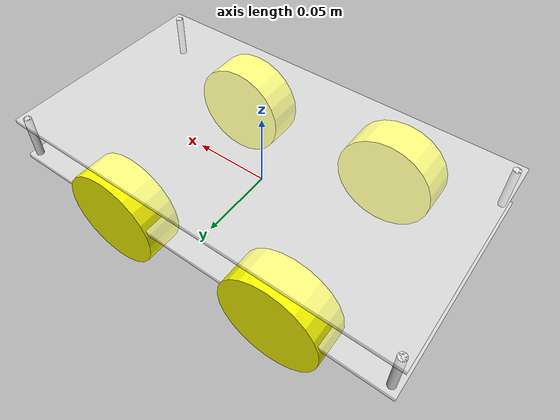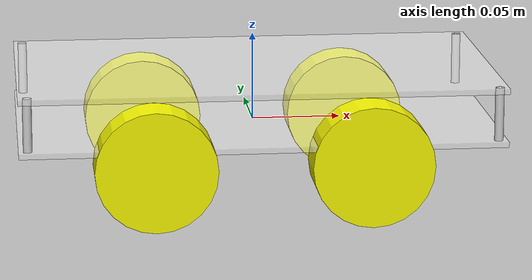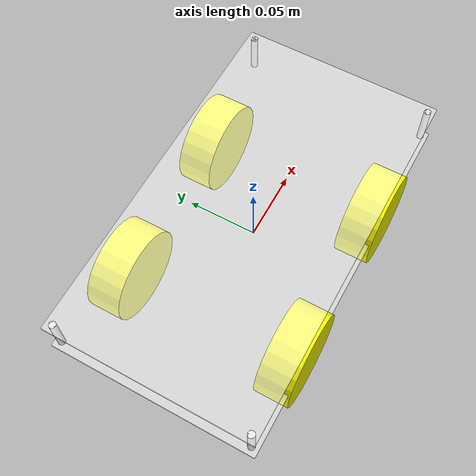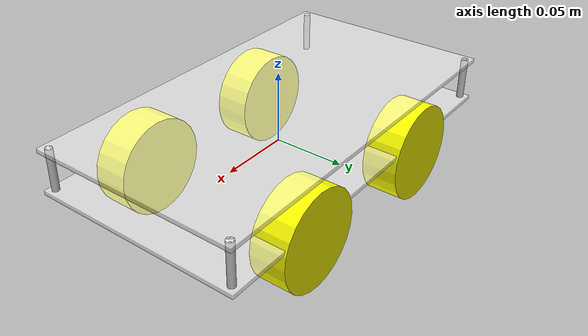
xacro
<?xml version="1.0"?>
<robot name="sp1s" xmlns:xacro="http://ros.org/wiki/xacro">
  <link name="base_link">
    <visual>
      <geometry>
        <box size="0.27 .15 .003"/>
      </geometry>
      <material name="white">
         <color rgba="1 1 1 .5"/>
    </material>
    </visual>
  </link>

  <link name="tyer_front_left">
    <visual>
      <geometry>
       <cylinder length=".025" radius="0.034"></cylinder>
      </geometry>
      <material name="yellow">
          <color rgba="1 1 0 1"/>
      </material>
    </visual>
  </link>

  <link name="tyer_front_right">
    <visual>
      <geometry>
       <cylinder length=".025" radius="0.034"></cylinder>
      </geometry>
      <material name="yellow">
          <color rgba="1 1 0 1"/>
      </material>
    </visual>
  </link>

  <link name="tyer_back_left">
    <visual>
      <geometry>
       <cylinder length=".025" radius="0.034"></cylinder>
      </geometry>
      <material name="yellow">
          <color rgba="1 1 0 1"/>
      </material>
    </visual>
  </link>

  <link name="tyer_back_right">
    <visual>
      <geometry>
       <cylinder length=".025" radius="0.034"></cylinder>
      </geometry>
      <material name="yellow">
          <color rgba="1 1 0 1"/>
      </material>
    </visual>
  </link>

  <joint name="base_to_front_left" type="fixed">
    <origin rpy="1.57075  0  0" xyz="0.06  0.064  -0.011"/>
    <parent link="base_link"/>
    <child link="tyer_front_left"/>
    <axis xyz="0 0 1"/>
  </joint>

  <joint name="base_to_front_right" type="continuous">
    <origin rpy="1.57075  0  0" xyz="0.06  -0.064  -0.011"/>
    <parent link="base_link"/>
    <child link="tyer_front_right"/>
    <axis xyz="0 0 1"/>
  </joint>

  <joint name="base_to_back_left" type="continuous">
    <origin rpy="1.57075  0  0" xyz="-0.06  0.064  -0.011"/>
    <parent link="base_link"/>
    <child link="tyer_back_left"/>
    <axis xyz="0 0 1"/>
  </joint>

  <joint name="base_to_back_right" type="continuous">
    <origin rpy="1.57075  0  0" xyz="-0.06  -0.064  -0.011"/>
    <parent link="base_link"/>
    <child link="tyer_back_right"/>
    <axis xyz="0 0 1"/>
  </joint>

  <link name="pillar_front_left">
    <visual>
      <geometry>
       <cylinder length=".03" radius="0.0025"></cylinder>
      </geometry>
      <origin xyz="0 0 0.015"/>
      <material name="silver">
          <color rgba=".86 .86 .86 1"/>
      </material>
    </visual>
  </link>

  <link name="pillar_front_right">
    <visual>
      <geometry>
       <cylinder length=".03" radius="0.0025"></cylinder>
      </geometry>
      <origin xyz="0 0 0.015"/>
      <material name="silver">
          <color rgba=".86 .86 .86 1"/>
      </material>
    </visual>
  </link>

  <link name="pillar_back_left">
    <visual>
      <geometry>
       <cylinder length=".03" radius="0.0025"></cylinder>
      </geometry>
      <origin xyz="0 0 0.015"/>
      <material name="silver">
          <color rgba=".86 .86 .86 1"/>
      </material>
    </visual>
  </link>

  <link name="pillar_back_right">
    <visual>
      <geometry>
       <cylinder length=".03" radius="0.0025"></cylinder>
      </geometry>
      <origin xyz="0 0 0.015"/>
      <material name="silver">
          <color rgba=".86 .86 .86 1"/>
      </material>
    </visual>
  </link>

  <joint name="base_to_pillar_front_left" type="fixed">
    <origin xyz="0.13  0.07  0.0015"/>
    <parent link="base_link"/>
    <child link="pillar_front_left"/>
  </joint>

  <joint name="base_to_pillar_front_right" type="fixed">
    <origin xyz="-0.13  0.07  0.0015"/>
    <parent link="base_link"/>
    <child link="pillar_front_right"/>
  </joint>

  <joint name="base_to_pillar_back_left" type="fixed">
    <origin xyz="0.13  -0.07  0.0015"/>
    <parent link="base_link"/>
    <child link="pillar_back_left"/>
  </joint>

  <joint name="base_to_pillar_back_right" type="fixed">
    <origin xyz="-0.13  -0.07  0.0015"/>
    <parent link="base_link"/>
    <child link="pillar_back_right"/>
  </joint>

  <link name="top_link">
    <visual>
      <geometry>
        <box size="0.27 .15 .003"/>
      </geometry>
      <material name="white">
         <color rgba="1 1 1 .5"/>
    </material>
    </visual>
  </link>

  <joint name="base_to_top" type="fixed">
    <origin xyz="0  0  0.03"/>
    <parent link="base_link"/>
    <child link="top_link"/>
  </joint>

</robot>
